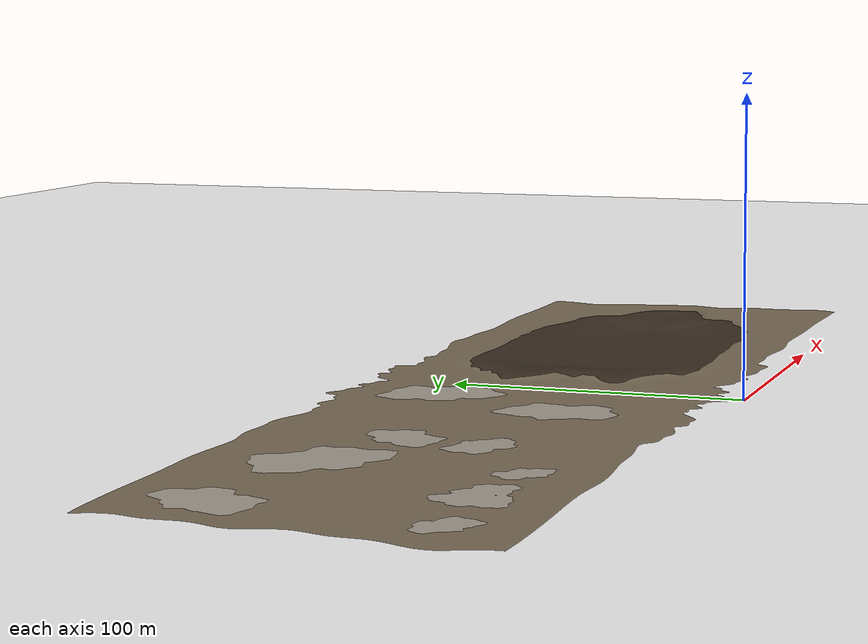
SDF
<?xml version="1.0"?>
<sdf version="1.9">
  <model name="aero_sense_ground">
    <static>true</static>
    <link name="link">
      <collision name="collision">
        <geometry><plane><normal>0 0 1</normal><size>440 360</size></plane></geometry>
      </collision>
      <visual name="visual">
        <pose>0 20 0 0 0 0</pose>
        <cast_shadows>false</cast_shadows>
        <geometry><mesh><uri>model://aero_sense_ground/meshes/ground.obj</uri></mesh></geometry>
        <material>
          <diffuse>1 1 1 1</diffuse>
          <pbr><metal>
            <albedo_map>model://gazebo_models_worlds_collection-master/models/cyberzoo/cyberzoo_floor/grass_green.png</albedo_map>
            <roughness>0.95</roughness><metalness>0</metalness>
          </metal></pbr>
        </material>
        <plugin filename="gz-sim-thermal-system" name="gz::sim::systems::Thermal">
          <temperature>298</temperature>
        </plugin>
      </visual>
      <visual name="earth">
        <pose>0 20 0 0 0 0</pose>
        <cast_shadows>false</cast_shadows>
        <geometry><mesh><uri>model://aero_sense_ground/meshes/earth.obj</uri></mesh></geometry>
        <material>
          <ambient>0.50 0.44 0.35 1</ambient><diffuse>0.50 0.44 0.35 1</diffuse>
          <pbr><metal><roughness>0.95</roughness><metalness>0</metalness></metal></pbr>
        </material>
        <plugin filename="gz-sim-thermal-system" name="gz::sim::systems::Thermal">
          <temperature>298</temperature>
        </plugin>
      </visual>
      <visual name="dust">
        <pose>0 20 0 0 0 0</pose>
        <cast_shadows>false</cast_shadows>
        <geometry><mesh><uri>model://aero_sense_ground/meshes/dust.obj</uri></mesh></geometry>
        <material>
          <ambient>0.66 0.63 0.58 1</ambient><diffuse>0.66 0.63 0.58 1</diffuse>
          <pbr><metal><roughness>0.95</roughness><metalness>0</metalness></metal></pbr>
        </material>
        <plugin filename="gz-sim-thermal-system" name="gz::sim::systems::Thermal">
          <temperature>298</temperature>
        </plugin>
      </visual>
      <visual name="mud">
        <pose>0 20 0 0 0 0</pose>
        <cast_shadows>false</cast_shadows>
        <geometry><mesh><uri>model://aero_sense_ground/meshes/mud.obj</uri></mesh></geometry>
        <material>
          <ambient>0.24 0.19 0.14 1</ambient><diffuse>0.24 0.19 0.14 1</diffuse>
          <pbr><metal><roughness>0.6</roughness><metalness>0</metalness></metal></pbr>
        </material>
        <plugin filename="gz-sim-thermal-system" name="gz::sim::systems::Thermal">
          <temperature>294</temperature>
        </plugin>
      </visual>
    </link>
  </model>
</sdf>
